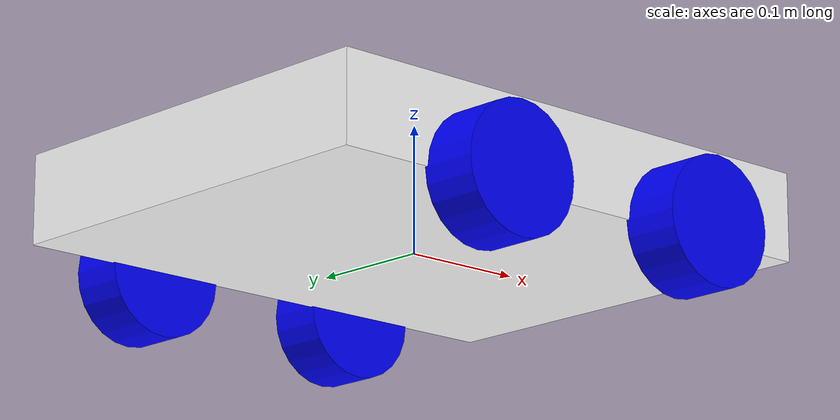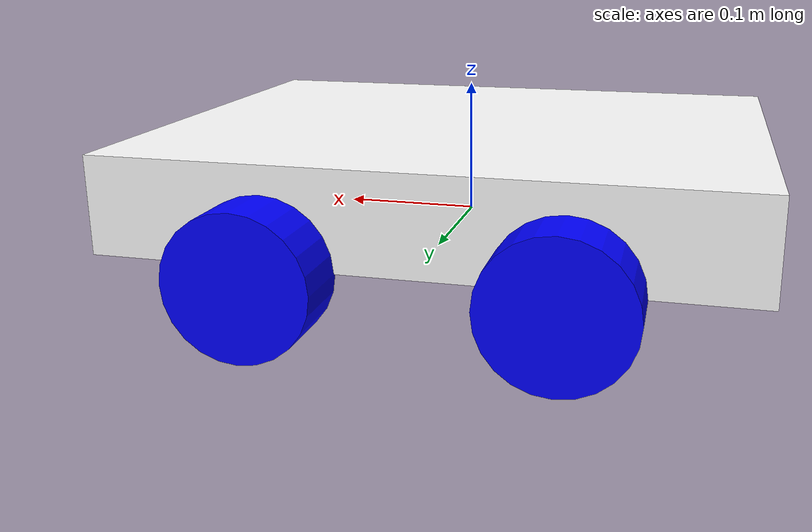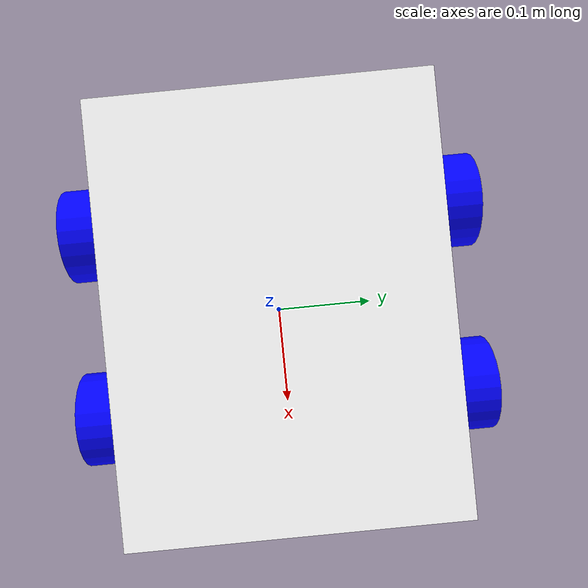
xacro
<?xml version="1.0"?>
<robot xmlns:xacro="http://www.ros.org/wiki/xacro" >
    <xacro:include filename="$(find robot_model)/description/inertial_macros.xacro"/>

    <material name="white">
        <color rgba="1 1 1 1"/>
    </material>

    <material name="orange">
        <color rgba="1 0.5 0 1"/>
    </material>

    <material name="blue">
        <color rgba="0 0 1 1"/>
    </material>

    <material name="black">
        <color rgba="0 0 0 1"/>
    </material>

    <!-- ================= BASE LINK ================= -->

    <link name="base_link">

    </link>

    <!-- ================= CHASSIS LINK ================= -->

    <joint name="chassis_joint" type="fixed">
        <parent link="base_link"/>
        <child link="chassis"/>
        <origin xyz="-0.225 0 0" rpy="0 0 0"/>
    </joint>

    <link name="chassis">
        <visual>
            <origin xyz="0.225 0 0.035" rpy="0 0 0"/>
            <geometry>
                <box size="0.45 0.35 0.07"/>
            </geometry>
            <material name="white"/>
        </visual>
        <collision>
            <origin xyz="0.225 0 0.035" rpy="0 0 0"/>
            <geometry>
                <box size="0.45 0.35 0.07"/>
            </geometry>
        </collision>

        <xacro:inertial_box mass="1.0" x="0.45" y="0.35" z="0.07">
            <origin xyz="0.225 0 0.035" rpy="0 0 0"/>
        </xacro:inertial_box>

    </link>
    <gazebo reference="chassis">
        <material>Gazebo/White</material>
    </gazebo>
    <!-- ================= LEFT FRONT WHEEL LINK ================= -->

    <joint name="left_front_wheel_joint" type="continuous">
        <parent link="base_link"/>
        <child link="left_front_wheel"/>
        <origin xyz="-0.1 0.195 0" rpy="-${pi/2} 0 0"/>
        <axis xyz="0 0 1"/>
    </joint>

    <link name="left_front_wheel">
        <visual>
            <!--origin xyz="-0.1 0.195 0" rpy="-${pi/2} 0 0"/-->
            <geometry>
                <cylinder radius="0.05" length="0.045"/>
            </geometry>
            <material name="blue"/>
        </visual>
        <collision>
            <!--origin xyz="-0.1 0.195 0" rpy="-${pi/2} 0 0"/-->
            <geometry>
                <cylinder radius="0.05" length="0.045"/>
            </geometry>
        </collision>
        <xacro:inertial_cylinder mass="0.2" radius="0.05" length="0.045">
            <origin xyz="0 0 0" rpy="0 0 0"/>
        </xacro:inertial_cylinder>
    </link>
    <gazebo reference="left_front_wheel">
        <material>Gazebo/Blue</material>
    </gazebo>
    <!-- ================= LEFT REAR WHEEL LINK ================= -->

    <joint name="left_rear_wheel_joint" type="continuous">
        <parent link="base_link"/>
        <child link="left_rear_wheel"/>
        <origin xyz="0.1 0.195 0" rpy="-${pi/2} 0 0"/>
        <axis xyz="0 0 1"/>
        <mimic joint="left_front_wheel_joint"/>
    </joint>

    <link name="left_rear_wheel">
        <visual>
            <!--origin xyz="0.1 0.195 0" rpy="-${pi/2} 0 0"/-->
            <geometry>
                <cylinder radius="0.05" length="0.045"/>
            </geometry>
            <material name="blue"/>
        </visual>
        <collision>
            <!--origin xyz="0.1 0.195 0" rpy="-${pi/2} 0 0"/-->
            <geometry>
                <cylinder radius="0.05" length="0.045"/>
            </geometry>
        </collision>
        <xacro:inertial_cylinder mass="0.2" radius="0.05" length="0.045">
            <origin xyz="0 0 0" rpy="0 0 0"/>
        </xacro:inertial_cylinder>
    </link>
    <gazebo reference="left_rear_wheel">
        <material>Gazebo/Blue</material>
        <mu1 value="0.001" />
        <mu2 value="0.001"/>
    </gazebo>
        <!-- ================= RIGHT FRONT WHEEL LINK ================= -->

    <joint name="right_front_wheel_joint" type="continuous">
        <parent link="base_link"/>
        <child link="right_front_wheel"/>
        <origin xyz="-0.1 -0.195 0" rpy="-${pi/2} 0 0"/>
        <axis xyz="0 0 1"/>
    </joint>

    <link name="right_front_wheel">
        <visual>
            <!--origin xyz="-0.1 -0.195 0" rpy="${pi/2} 0 0"/-->
            <geometry>
                <cylinder radius="0.05" length="0.045"/>
            </geometry>
            <material name="blue"/>
        </visual>
        <collision>
            <!--origin xyz="-0.1 -0.195 0" rpy="${pi/2} 0 0"/-->
            <geometry>
                <cylinder radius="0.05" length="0.045"/>
            </geometry>
        </collision>
        <xacro:inertial_cylinder mass="0.2" radius="0.05" length="0.045">
            <origin xyz="0 0 0" rpy="0 0 0"/>
        </xacro:inertial_cylinder>

    </link>
    <gazebo reference="right_front_wheel">
        <material>Gazebo/Blue</material>
    </gazebo>
    <!-- ================= RIGHT REAR WHEEL LINK ================= -->

    <joint name="right_rear_wheel_joint" type="continuous">
        <parent link="base_link"/>
        <child link="right_rear_wheel"/>
        <origin xyz="0.1 -0.195 0" rpy="-${pi/2} 0 0"/>
        <axis xyz="0 0 1"/>
        <mimic joint="right_front_wheel_joint"/>
    </joint>

    <link name="right_rear_wheel">
        <visual>
            <!--origin xyz="0.1 -0.195 0" rpy="${pi/2} 0 0"/-->
            <geometry>
                <cylinder radius="0.05" length="0.045"/>
            </geometry>
            <material name="blue"/>
        </visual>
        <collision>
            <!--origin xyz="0.1 -0.195 0" rpy="${pi/2} 0 0"/-->
            <geometry>
                <cylinder radius="0.05" length="0.045"/>
            </geometry>
        </collision>
        <xacro:inertial_cylinder mass="0.2" radius="0.05" length="0.045">
            <origin xyz="0 0 0" rpy="0 0 0"/>
        </xacro:inertial_cylinder>
    </link>
    <gazebo reference="right_rear_wheel">
        <material>Gazebo/Blue</material>
        <mu1 value="0.001" />
        <mu2 value="0.001"/>
    </gazebo>
</robot>
